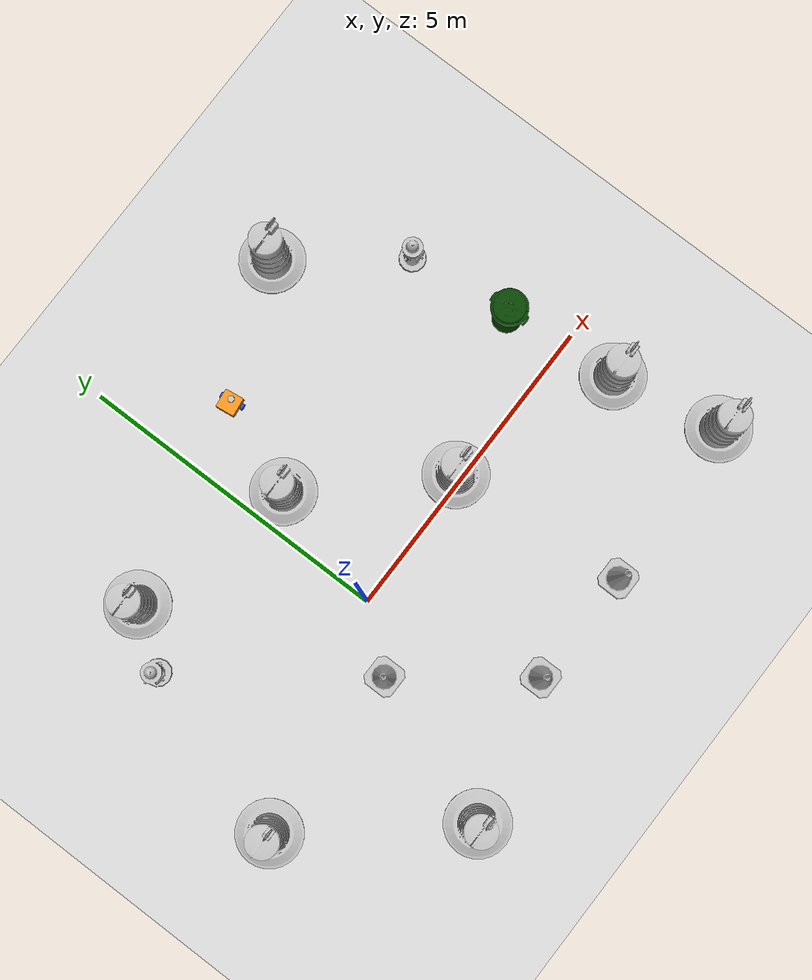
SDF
<sdf version="1.7">
 <world name="default">
  <light name="sun" type="directional">
   <pose>0 0 10 0 -0 0</pose>
   <diffuse>0.8 0.8 0.8 1</diffuse>
   <specular>0.2 0.2 0.2 1</specular>
   <attenuation>
    <range>1000</range>
    <constant>0.9</constant>
    <linear>0.01</linear>
    <quadratic>0.001</quadratic>
   </attenuation>
   <direction>-0.5 0.1 -0.9</direction>
   <spot><inner_angle>0</inner_angle><outer_angle>0</outer_angle><falloff>0</falloff></spot>
  </light>
  <model name="ground_plane">
   <static>1</static>
   <link name="link">
    <collision name="collision">
     <geometry><plane><normal>0 0 1</normal><size>100 100</size></plane></geometry>
     <surface><friction><ode><mu>100</mu><mu2>50</mu2></ode></friction></surface>
    </collision>
    <visual name="visual">
     <cast_shadows>0</cast_shadows>
     <geometry><plane><normal>0 0 1</normal><size>100 100</size></plane></geometry>
     <material>
      <script><uri>file://media/materials/scripts/gazebo.material</uri><name>Gazebo/Grey</name></script>
     </material>
    </visual>
   </link>
  </model>
  <gravity>0 0 -9.8</gravity>
  <magnetic_field>6e-06 2.3e-05 -4.2e-05</magnetic_field>
  <atmosphere type="adiabatic"/>
  <physics type="ode">
   <max_step_size>0.001</max_step_size>
   <real_time_factor>1</real_time_factor>
   <real_time_update_rate>1000</real_time_update_rate>
  </physics>
  <scene><ambient>0.4 0.4 0.4 1</ambient><background>0.7 0.7 0.7 1</background><shadows>1</shadows></scene>
  <audio><device>default</device></audio>
  <spherical_coordinates>
   <surface_model>EARTH_WGS84</surface_model>
   <latitude_deg>0</latitude_deg>
   <longitude_deg>0</longitude_deg>
   <elevation>0</elevation>
   <heading_deg>0</heading_deg>
  </spherical_coordinates>
  <model name="Construction Cone">
   <link name="link">
    <collision name="collision">
     <geometry>
      <mesh><scale>10 10 10</scale><uri>model://construction_cone/meshes/construction_cone.dae</uri></mesh>
     </geometry>
    </collision>
    <visual name="visual">
     <geometry>
      <mesh><scale>10 10 10</scale><uri>model://construction_cone/meshes/construction_cone.dae</uri></mesh>
     </geometry>
    </visual>
    <inertial>
     <inertia><ixx>1</ixx><ixy>0</ixy><ixz>0</ixz><iyy>1</iyy><iyz>0</iyz><izz>1</izz></inertia>
     <mass>1</mass>
    </inertial>
   </link>
   <pose>-0.712743 -0.878259 -0 0 -1e-06 0</pose>
  </model>
  <model name="Construction Cone_0">
   <link name="link">
    <collision name="collision">
     <geometry>
      <mesh><scale>10 10 10</scale><uri>model://construction_cone/meshes/construction_cone.dae</uri></mesh>
     </geometry>
    </collision>
    <visual name="visual">
     <geometry>
      <mesh><scale>10 10 10</scale><uri>model://construction_cone/meshes/construction_cone.dae</uri></mesh>
     </geometry>
    </visual>
    <inertial>
     <inertia><ixx>1</ixx><ixy>0</ixy><ixz>0</ixz><iyy>1</iyy><iyz>0</iyz><izz>1</izz></inertia>
     <mass>1</mass>
    </inertial>
   </link>
   <pose>0.670139 -2.69678 -9e-06 1e-06 -1e-06 0</pose>
  </model>
  <model name="Construction Barrel">
   <link name="link">
    <inertial>
     <pose>0 0 0.4 0 -0 0</pose>
     <mass>500</mass>
     <inertia><ixx>51.2096</ixx><iyy>51.2096</iyy><izz>25</izz><ixy>0</ixy><ixz>0</ixz><iyz>0</iyz></inertia>
    </inertial>
    <collision name="collision">
     <geometry><mesh><uri>model://construction_barrel/meshes/construction_barrel.dae</uri></mesh></geometry>
    </collision>
    <visual name="visual">
     <geometry><mesh><uri>model://construction_barrel/meshes/construction_barrel.dae</uri></mesh></geometry>
    </visual>
   </link>
   <pose>-2.08457 2.64608 1e-06 3e-06 2e-06 -3.6e-05</pose>
  </model>
  <model name="Construction Barrel_0">
   <link name="link">
    <inertial>
     <pose>0 0 0.4 0 -0 0</pose>
     <mass>500</mass>
     <inertia><ixx>51.2096</ixx><iyy>51.2096</iyy><izz>25</izz><ixy>0</ixy><ixz>0</ixz><iyz>0</iyz></inertia>
    </inertial>
    <collision name="collision">
     <geometry><mesh><uri>model://construction_barrel/meshes/construction_barrel.dae</uri></mesh></geometry>
    </collision>
    <visual name="visual">
     <geometry><mesh><uri>model://construction_barrel/meshes/construction_barrel.dae</uri></mesh></geometry>
    </visual>
   </link>
   <pose>0.536951 1.97216 -1e-06 -8e-06 -2e-06 -2.5e-05</pose>
  </model>
  <model name="Construction Barrel_1">
   <link name="link">
    <inertial>
     <pose>0 0 0.4 0 -0 0</pose>
     <mass>500</mass>
     <inertia><ixx>51.2096</ixx><iyy>51.2096</iyy><izz>25</izz><ixy>0</ixy><ixz>0</ixz><iyz>0</iyz></inertia>
    </inertial>
    <collision name="collision">
     <geometry><mesh><uri>model://construction_barrel/meshes/construction_barrel.dae</uri></mesh></geometry>
    </collision>
    <visual name="visual">
     <geometry><mesh><uri>model://construction_barrel/meshes/construction_barrel.dae</uri></mesh></geometry>
    </visual>
   </link>
   <pose>5.21474 -2.57749 -0 0 -0 -2.9e-05</pose>
  </model>
  <model name="fire_hydrant">
   <static>1</static>
   <link name="link">
    <collision name="collision">
     <geometry><mesh><uri>model://fire_hydrant/meshes/fire_hydrant.dae</uri></mesh></geometry>
    </collision>
    <visual name="visual">
     <geometry><mesh><uri>model://fire_hydrant/meshes/fire_hydrant.dae</uri></mesh></geometry>
    </visual>
   </link>
   <pose>-2.67363 1.77455 0 0 -0 0</pose>
  </model>
  <model name="Construction Cone_1">
   <link name="link">
    <collision name="collision">
     <geometry>
      <mesh><scale>10 10 10</scale><uri>model://construction_cone/meshes/construction_cone.dae</uri></mesh>
     </geometry>
    </collision>
    <visual name="visual">
     <geometry>
      <mesh><scale>10 10 10</scale><uri>model://construction_cone/meshes/construction_cone.dae</uri></mesh>
     </geometry>
    </visual>
    <inertial>
     <inertia><ixx>1</ixx><ixy>0</ixy><ixz>0</ixz><iyy>1</iyy><iyz>0</iyz><izz>1</izz></inertia>
     <mass>1</mass>
    </inertial>
   </link>
   <pose>2.52271 -2.72871 -0 0 -0 0</pose>
  </model>
  <model name="Construction Barrel_2">
   <link name="link">
    <inertial>
     <pose>0 0 0.4 0 -0 0</pose>
     <mass>500</mass>
     <inertia><ixx>51.2096</ixx><iyy>51.2096</iyy><izz>25</izz><ixy>0</ixy><ixz>0</ixz><iyz>0</iyz></inertia>
    </inertial>
    <collision name="collision">
     <geometry><mesh><uri>model://construction_barrel/meshes/construction_barrel.dae</uri></mesh></geometry>
    </collision>
    <visual name="visual">
     <geometry><mesh><uri>model://construction_barrel/meshes/construction_barrel.dae</uri></mesh></geometry>
    </visual>
   </link>
   <pose>4.89229 -0.858134 -2e-06 4e-06 7e-06 -1.8e-05</pose>
  </model>
  <model name="my_bot">
   <link name="base_link">
    <inertial>
     <pose>0.055714 0 0.078571 0 -0 0</pose>
     <mass>0.7</mass>
     <inertia>
      <ixx>0.0064169</ixx>
      <ixy>0</ixy>
      <ixz>0.00118929</ixz>
      <iyy>0.00745405</iyy>
      <iyz>0</iyz>
      <izz>0.00876214</izz>
     </inertia>
    </inertial>
    <collision name="base_link_fixed_joint_lump__chassis_collision">
     <pose>0.05 0 0.075 0 -0 0</pose>
     <geometry><box><size>0.3 0.3 0.15</size></box></geometry>
    </collision>
    <collision name="base_link_fixed_joint_lump__caster_wheel_collision_1">
     <pose>0.14 0 0 0 -0 0</pose>
     <geometry><sphere><radius>0.05</radius></sphere></geometry>
     <surface><friction><ode><mu>0.001</mu><mu2>0.001</mu2></ode></friction></surface>
    </collision>
    <collision name="base_link_fixed_joint_lump__lidar_frame_collision_2">
     <pose>0 0 0.175 0 -0 0</pose>
     <geometry><cylinder><length>0.04</length><radius>0.05</radius></cylinder></geometry>
    </collision>
    <visual name="base_link_fixed_joint_lump__chassis_visual">
     <pose>0.05 0 0.075 0 -0 0</pose>
     <geometry><box><size>0.3 0.3 0.15</size></box></geometry>
     <material>
      <script><name>Gazebo/Orange</name><uri>file://media/materials/scripts/gazebo.material</uri></script>
     </material>
    </visual>
    <visual name="base_link_fixed_joint_lump__caster_wheel_visual_1">
     <pose>0.14 0 0 0 -0 0</pose>
     <geometry><sphere><radius>0.05</radius></sphere></geometry>
     <material>
      <script><name>Gazebo/Black</name><uri>file://media/materials/scripts/gazebo.material</uri></script>
     </material>
    </visual>
    <visual name="base_link_fixed_joint_lump__lidar_frame_visual_2">
     <pose>0 0 0.175 0 -0 0</pose>
     <geometry><cylinder><length>0.04</length><radius>0.05</radius></cylinder></geometry>
    </visual>
    <sensor name="laser" type="ray">
     <visualize>0</visualize>
     <update_rate>50</update_rate>
     <ray>
      <scan>
       <horizontal>
        <samples>360</samples>
        <min_angle>-3.14</min_angle>
        <max_angle>3.14</max_angle>
        <resolution>1</resolution>
       </horizontal>
       <vertical><samples>1</samples><min_angle>0</min_angle><max_angle>0</max_angle></vertical>
      </scan>
      <range><min>0.2</min><max>12</max></range>
     </ray>
     <plugin name="lidar_controller" filename="libgazebo_ros_ray_sensor.so">
      <ros><argument>~/out:=/scan</argument></ros>
      <output_type>sensor_msgs/LaserScan</output_type>
      <frame_name>lidar_frame</frame_name>
     </plugin>
     <pose>0 0 0.175 0 -0 0</pose>
    </sensor>
   </link>
   <joint name="left_wheel_joint" type="revolute">
    <pose relative_to="base_link">0 0.175 0 -1.5708 0 0</pose>
    <parent>base_link</parent>
    <child>left_wheel</child>
    <axis>
     <xyz>0 0 1</xyz>
     <limit><lower>-1e+16</lower><upper>1e+16</upper></limit>
     <dynamics><spring_reference>0</spring_reference><spring_stiffness>0</spring_stiffness></dynamics>
    </axis>
   </joint>
   <link name="left_wheel">
    <pose relative_to="left_wheel_joint">0 0 0 0 -0 0</pose>
    <inertial>
     <mass>0.1</mass>
     <inertia>
      <ixx>7.58333e-05</ixx>
      <ixy>0</ixy>
      <ixz>0</ixz>
      <iyy>7.58333e-05</iyy>
      <iyz>0</iyz>
      <izz>0.000125</izz>
     </inertia>
    </inertial>
    <collision name="left_wheel_collision">
     <geometry><cylinder><length>0.04</length><radius>0.05</radius></cylinder></geometry>
    </collision>
    <visual name="left_wheel_visual">
     <geometry><cylinder><length>0.04</length><radius>0.05</radius></cylinder></geometry>
     <material>
      <script><name>Gazebo/Blue</name><uri>file://media/materials/scripts/gazebo.material</uri></script>
     </material>
    </visual>
   </link>
   <joint name="right_wheel_joint" type="revolute">
    <pose relative_to="base_link">0 -0.175 0 1.5708 -0 0</pose>
    <parent>base_link</parent>
    <child>right_wheel</child>
    <axis>
     <xyz>0 0 -1</xyz>
     <limit><lower>-1e+16</lower><upper>1e+16</upper></limit>
     <dynamics><spring_reference>0</spring_reference><spring_stiffness>0</spring_stiffness></dynamics>
    </axis>
   </joint>
   <link name="right_wheel">
    <pose relative_to="right_wheel_joint">0 0 0 0 -0 0</pose>
    <inertial>
     <mass>0.1</mass>
     <inertia>
      <ixx>7.58333e-05</ixx>
      <ixy>0</ixy>
      <ixz>0</ixz>
      <iyy>7.58333e-05</iyy>
      <iyz>0</iyz>
      <izz>0.000125</izz>
     </inertia>
    </inertial>
    <collision name="right_wheel_collision">
     <geometry><cylinder><length>0.04</length><radius>0.05</radius></cylinder></geometry>
    </collision>
    <visual name="right_wheel_visual">
     <geometry><cylinder><length>0.04</length><radius>0.05</radius></cylinder></geometry>
     <material>
      <script><name>Gazebo/Blue</name><uri>file://media/materials/scripts/gazebo.material</uri></script>
     </material>
    </visual>
   </link>
   <static>0</static>
   <plugin name="diffdrive" filename="libgazebo_ros_diff_drive.so">
    <left_joint>left_wheel_joint</left_joint>
    <right_joint>right_wheel_joint</right_joint>
    <wheel_separation>0.3</wheel_separation>
    <wheel_diameter>0.1</wheel_diameter>
    <max_wheel_torque>200</max_wheel_torque>
    <max_wheel_acceleration>10.0</max_wheel_acceleration>
    <odometry_frame>odom</odometry_frame>
    <robot_base_frame>base_link</robot_base_frame>
    <publish_odom>1</publish_odom>
    <publish_odom_tf>1</publish_odom_tf>
    <publish_wheel_tf>1</publish_wheel_tf>
   </plugin>
   <pose>1.13949 3.39815 0.049998 1.9e-05 -1.6e-05 -3.01149</pose>
  </model>
  <model name="fire_hydrant_0">
   <static>1</static>
   <link name="link">
    <collision name="collision">
     <geometry><mesh><uri>model://fire_hydrant/meshes/fire_hydrant.dae</uri></mesh></geometry>
    </collision>
    <visual name="visual">
     <geometry><mesh><uri>model://fire_hydrant/meshes/fire_hydrant.dae</uri></mesh></geometry>
    </visual>
   </link>
   <pose>4.46243 2.57778 0 0 -0 0</pose>
  </model>
  <model name="first_2015_trash_can">
   <link name="link">
    <inertial>
     <pose>0 0 0.3683 0 -0 0</pose>
     <mass>4.83076</mass>
     <inertia>
      <ixx>0.281534</ixx>
      <ixy>0</ixy>
      <ixz>0</ixz>
      <iyy>0.281534</iyy>
      <iyz>0</iyz>
      <izz>0.126223</izz>
     </inertia>
    </inertial>
    <visual name="visual">
     <geometry><mesh><uri>model://first_2015_trash_can/meshes/trash_can.dae</uri></mesh></geometry>
    </visual>
    <collision name="collision">
     <geometry><mesh><uri>model://first_2015_trash_can/meshes/trash_can.dae</uri></mesh></geometry>
    </collision>
   </link>
   <pose>4.63097 0.9298 8e-06 -5.2e-05 -2.8e-05 -0.000315</pose>
  </model>
  <model name="Construction Barrel_3">
   <link name="link">
    <inertial>
     <pose>0 0 0.4 0 -0 0</pose>
     <mass>500</mass>
     <inertia><ixx>51.2096</ixx><iyy>51.2096</iyy><izz>25</izz><ixy>0</ixy><ixz>0</ixz><iyz>0</iyz></inertia>
    </inertial>
    <collision name="collision">
     <geometry><mesh><uri>model://construction_barrel/meshes/construction_barrel.dae</uri></mesh></geometry>
    </collision>
    <visual name="visual">
     <geometry><mesh><uri>model://construction_barrel/meshes/construction_barrel.dae</uri></mesh></geometry>
    </visual>
   </link>
   <pose>2.29288 0.101917 -1e-06 3e-06 1e-05 -7e-06</pose>
  </model>
  <model name="Construction Barrel_4">
   <link name="link">
    <inertial>
     <pose>0 0 0.4 0 -0 0</pose>
     <mass>500</mass>
     <inertia><ixx>51.2096</ixx><iyy>51.2096</iyy><izz>25</izz><ixy>0</ixy><ixz>0</ixz><iyz>0</iyz></inertia>
    </inertial>
    <collision name="collision">
     <geometry><mesh><uri>model://construction_barrel/meshes/construction_barrel.dae</uri></mesh></geometry>
    </collision>
    <visual name="visual">
     <geometry><mesh><uri>model://construction_barrel/meshes/construction_barrel.dae</uri></mesh></geometry>
    </visual>
   </link>
   <pose>3.18848 4.24945 1e-06 2e-06 3e-06 -6e-06</pose>
  </model>
  <model name="Construction Barrel_5">
   <link name="link">
    <inertial>
     <pose>0 0 0.4 0 -0 0</pose>
     <mass>500</mass>
     <inertia><ixx>51.2096</ixx><iyy>51.2096</iyy><izz>25</izz><ixy>0</ixy><ixz>0</ixz><iyz>0</iyz></inertia>
    </inertial>
    <collision name="collision">
     <geometry><mesh><uri>model://construction_barrel/meshes/construction_barrel.dae</uri></mesh></geometry>
    </collision>
    <visual name="visual">
     <geometry><mesh><uri>model://construction_barrel/meshes/construction_barrel.dae</uri></mesh></geometry>
    </visual>
   </link>
   <pose>-1.57378 -3.25059 0 0 0 -3e-06</pose>
  </model>
  <model name="Construction Barrel_6">
   <link name="link">
    <inertial>
     <pose>0 0 0.4 0 -0 0</pose>
     <mass>500</mass>
     <inertia><ixx>51.2096</ixx><iyy>51.2096</iyy><izz>25</izz><ixy>0</ixy><ixz>0</ixz><iyz>0</iyz></inertia>
    </inertial>
    <collision name="collision">
     <geometry><mesh><uri>model://construction_barrel/meshes/construction_barrel.dae</uri></mesh></geometry>
    </collision>
    <visual name="visual">
     <geometry><mesh><uri>model://construction_barrel/meshes/construction_barrel.dae</uri></mesh></geometry>
    </visual>
   </link>
   <pose>-3.52718 -0.936523 -1e-06 3e-06 -2e-06 -2e-06</pose>
  </model>
 </world>
</sdf>
